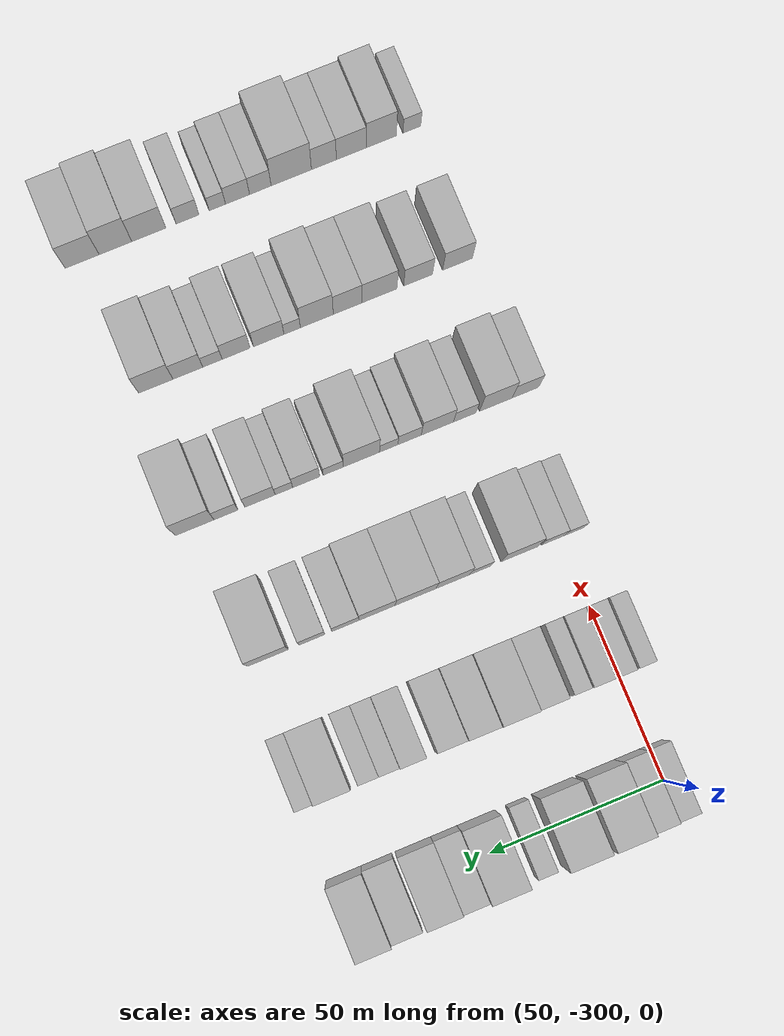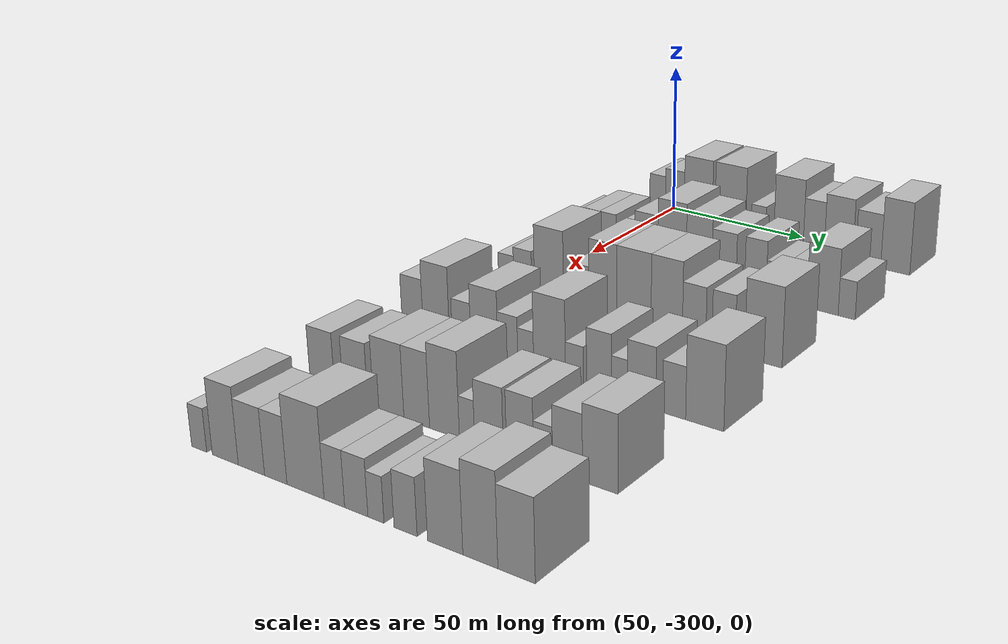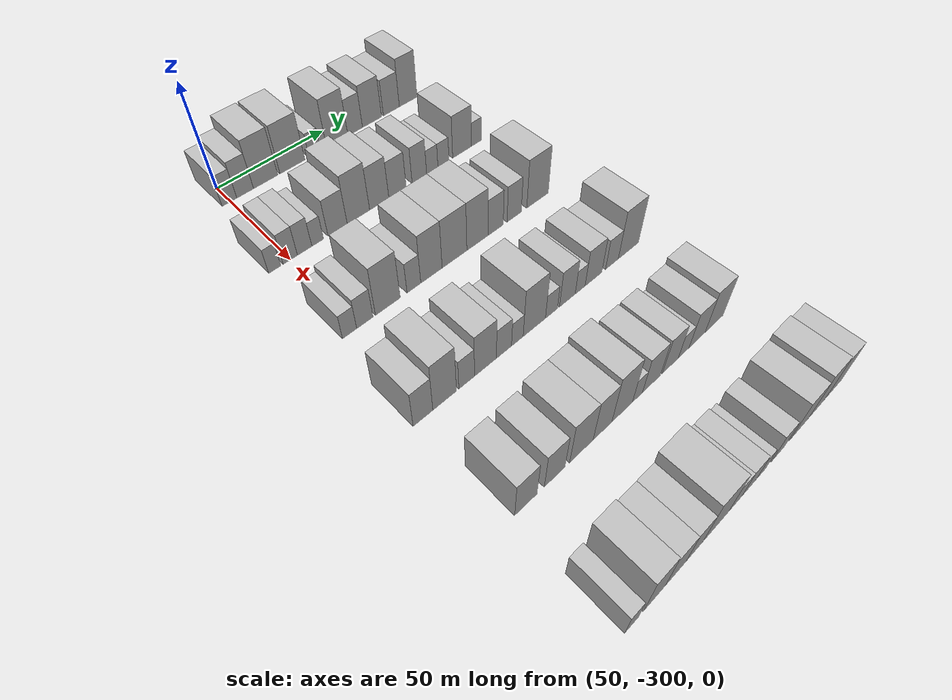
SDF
<sdf version="1.6">
 <world name="default">
  <model name="building_37">
   <static>1</static>
   <pose>50.0000 -300.4534 0 0.000000 0.000000 0.000000</pose>
   <link name="link">
    <pose>0 0 7.50 0 0 0</pose>
    <collision name="collision"><geometry><box><size>20.0000 6.4147 15.0000</size></box></geometry></collision>
    <visual name="visual">
     <cast_shadows>0</cast_shadows>
     <geometry><box><size>20.0000 6.4147 15.0000</size></box></geometry>
     <material>
      <script>
       <uri>model://HANNAS_wall/materials/scripts</uri>
       <uri>model://HANNAS_wall/materials/textures</uri>
       <name>vrc/HANNAS_wall</name>
      </script>
     </material>
    </visual>
   </link>
  </model>
  <model name="building_38">
   <static>1</static>
   <pose>50.0000 -293.5291 0 0.000000 0.000000 0.000000</pose>
   <link name="link">
    <pose>0 0 9.00 0 0 0</pose>
    <collision name="collision"><geometry><box><size>20.0000 7.4340 18.0000</size></box></geometry></collision>
    <visual name="visual">
     <cast_shadows>0</cast_shadows>
     <geometry><box><size>20.0000 7.4340 18.0000</size></box></geometry>
     <material>
      <script>
       <uri>model://HANNAS_wall/materials/scripts</uri>
       <uri>model://HANNAS_wall/materials/textures</uri>
       <name>vrc/HANNAS_wall</name>
      </script>
     </material>
    </visual>
   </link>
  </model>
  <model name="building_39">
   <static>1</static>
   <pose>50.0000 -284.2973 0 0.000000 0.000000 0.000000</pose>
   <link name="link">
    <pose>0 0 12.00 0 0 0</pose>
    <collision name="collision"><geometry><box><size>20.0000 11.0297 24.0000</size></box></geometry></collision>
    <visual name="visual">
     <cast_shadows>0</cast_shadows>
     <geometry><box><size>20.0000 11.0297 24.0000</size></box></geometry>
     <material>
      <script>
       <uri>model://HANNAS_wall/materials/scripts</uri>
       <uri>model://HANNAS_wall/materials/textures</uri>
       <name>vrc/HANNAS_wall</name>
      </script>
     </material>
    </visual>
   </link>
  </model>
  <model name="building_40">
   <static>1</static>
   <pose>50.0000 -271.8673 0 0.000000 0.000000 0.000000</pose>
   <link name="link">
    <pose>0 0 12.00 0 0 0</pose>
    <collision name="collision"><geometry><box><size>20.0000 11.8303 24.0000</size></box></geometry></collision>
    <visual name="visual">
     <cast_shadows>0</cast_shadows>
     <geometry><box><size>20.0000 11.8303 24.0000</size></box></geometry>
     <material>
      <script>
       <uri>model://HANNAS_wall/materials/scripts</uri>
       <uri>model://HANNAS_wall/materials/textures</uri>
       <name>vrc/HANNAS_wall</name>
      </script>
     </material>
    </visual>
   </link>
  </model>
  <model name="building_41">
   <static>1</static>
   <pose>50.0000 -261.1671 0 0.000000 0.000000 0.000000</pose>
   <link name="link">
    <pose>0 0 6.00 0 0 0</pose>
    <collision name="collision"><geometry><box><size>20.0000 5.5702 12.0000</size></box></geometry></collision>
    <visual name="visual">
     <cast_shadows>0</cast_shadows>
     <geometry><box><size>20.0000 5.5702 12.0000</size></box></geometry>
     <material>
      <script>
       <uri>model://HANNAS_wall/materials/scripts</uri>
       <uri>model://HANNAS_wall/materials/textures</uri>
       <name>vrc/HANNAS_wall</name>
      </script>
     </material>
    </visual>
   </link>
  </model>
  <model name="building_42">
   <static>1</static>
   <pose>50.0000 -249.9636 0 0.000000 0.000000 0.000000</pose>
   <link name="link">
    <pose>0 0 12.00 0 0 0</pose>
    <collision name="collision"><geometry><box><size>20.0000 10.8366 24.0000</size></box></geometry></collision>
    <visual name="visual">
     <cast_shadows>0</cast_shadows>
     <geometry><box><size>20.0000 10.8366 24.0000</size></box></geometry>
     <material>
      <script>
       <uri>model://HANNAS_wall/materials/scripts</uri>
       <uri>model://HANNAS_wall/materials/textures</uri>
       <name>vrc/HANNAS_wall</name>
      </script>
     </material>
    </visual>
   </link>
  </model>
  <model name="building_43">
   <static>1</static>
   <pose>50.0000 -240.7548 0 0.000000 0.000000 0.000000</pose>
   <link name="link">
    <pose>0 0 9.00 0 0 0</pose>
    <collision name="collision"><geometry><box><size>20.0000 7.5812 18.0000</size></box></geometry></collision>
    <visual name="visual">
     <cast_shadows>0</cast_shadows>
     <geometry><box><size>20.0000 7.5812 18.0000</size></box></geometry>
     <material>
      <script>
       <uri>model://HANNAS_wall/materials/scripts</uri>
       <uri>model://HANNAS_wall/materials/textures</uri>
       <name>vrc/HANNAS_wall</name>
      </script>
     </material>
    </visual>
   </link>
  </model>
  <model name="building_44">
   <static>1</static>
   <pose>50.0000 -231.9207 0 0.000000 0.000000 0.000000</pose>
   <link name="link">
    <pose>0 0 10.50 0 0 0</pose>
    <collision name="collision"><geometry><box><size>20.0000 10.0871 21.0000</size></box></geometry></collision>
    <visual name="visual">
     <cast_shadows>0</cast_shadows>
     <geometry><box><size>20.0000 10.0871 21.0000</size></box></geometry>
     <material>
      <script>
       <uri>model://HANNAS_wall/materials/scripts</uri>
       <uri>model://HANNAS_wall/materials/textures</uri>
       <name>vrc/HANNAS_wall</name>
      </script>
     </material>
    </visual>
   </link>
  </model>
  <model name="building_45">
   <static>1</static>
   <pose>50.0000 -221.5082 0 0.000000 0.000000 0.000000</pose>
   <link name="link">
    <pose>0 0 9.00 0 0 0</pose>
    <collision name="collision"><geometry><box><size>20.0000 8.7379 18.0000</size></box></geometry></collision>
    <visual name="visual">
     <cast_shadows>0</cast_shadows>
     <geometry><box><size>20.0000 8.7379 18.0000</size></box></geometry>
     <material>
      <script>
       <uri>model://HANNAS_wall/materials/scripts</uri>
       <uri>model://HANNAS_wall/materials/textures</uri>
       <name>vrc/HANNAS_wall</name>
      </script>
     </material>
    </visual>
   </link>
  </model>
  <model name="building_46">
   <static>1</static>
   <pose>50.0000 -212.1835 0 0.000000 0.000000 0.000000</pose>
   <link name="link">
    <pose>0 0 12.00 0 0 0</pose>
    <collision name="collision"><geometry><box><size>20.0000 9.9113 24.0000</size></box></geometry></collision>
    <visual name="visual">
     <cast_shadows>0</cast_shadows>
     <geometry><box><size>20.0000 9.9113 24.0000</size></box></geometry>
     <material>
      <script>
       <uri>model://HANNAS_wall/materials/scripts</uri>
       <uri>model://HANNAS_wall/materials/textures</uri>
       <name>vrc/HANNAS_wall</name>
      </script>
     </material>
    </visual>
   </link>
  </model>
  <model name="building_172">
   <static>1</static>
   <pose>90.0000 -306.5998 0 0.000000 0.000000 0.000000</pose>
   <link name="link">
    <pose>0 0 6.00 0 0 0</pose>
    <collision name="collision"><geometry><box><size>20.0000 5.0105 12.0000</size></box></geometry></collision>
    <visual name="visual">
     <cast_shadows>0</cast_shadows>
     <geometry><box><size>20.0000 5.0105 12.0000</size></box></geometry>
     <material>
      <script>
       <uri>model://HANNAS_wall/materials/scripts</uri>
       <uri>model://HANNAS_wall/materials/textures</uri>
       <name>vrc/HANNAS_wall</name>
      </script>
     </material>
    </visual>
   </link>
  </model>
  <model name="building_173">
   <static>1</static>
   <pose>90.0000 -300.0579 0 0.000000 0.000000 0.000000</pose>
   <link name="link">
    <pose>0 0 7.50 0 0 0</pose>
    <collision name="collision"><geometry><box><size>20.0000 6.0732 15.0000</size></box></geometry></collision>
    <visual name="visual">
     <cast_shadows>0</cast_shadows>
     <geometry><box><size>20.0000 6.0732 15.0000</size></box></geometry>
     <material>
      <script>
       <uri>model://HANNAS_wall/materials/scripts</uri>
       <uri>model://HANNAS_wall/materials/textures</uri>
       <name>vrc/HANNAS_wall</name>
      </script>
     </material>
    </visual>
   </link>
  </model>
  <model name="building_174">
   <static>1</static>
   <pose>90.0000 -293.9124 0 0.000000 0.000000 0.000000</pose>
   <link name="link">
    <pose>0 0 7.50 0 0 0</pose>
    <collision name="collision"><geometry><box><size>20.0000 6.2178 15.0000</size></box></geometry></collision>
    <visual name="visual">
     <cast_shadows>0</cast_shadows>
     <geometry><box><size>20.0000 6.2178 15.0000</size></box></geometry>
     <material>
      <script>
       <uri>model://HANNAS_wall/materials/scripts</uri>
       <uri>model://HANNAS_wall/materials/textures</uri>
       <name>vrc/HANNAS_wall</name>
      </script>
     </material>
    </visual>
   </link>
  </model>
  <model name="building_175">
   <static>1</static>
   <pose>90.0000 -288.2329 0 0.000000 0.000000 0.000000</pose>
   <link name="link">
    <pose>0 0 6.00 0 0 0</pose>
    <collision name="collision"><geometry><box><size>20.0000 5.1413 12.0000</size></box></geometry></collision>
    <visual name="visual">
     <cast_shadows>0</cast_shadows>
     <geometry><box><size>20.0000 5.1413 12.0000</size></box></geometry>
     <material>
      <script>
       <uri>model://HANNAS_wall/materials/scripts</uri>
       <uri>model://HANNAS_wall/materials/textures</uri>
       <name>vrc/HANNAS_wall</name>
      </script>
     </material>
    </visual>
   </link>
  </model>
  <model name="building_176">
   <static>1</static>
   <pose>90.0000 -279.3169 0 0.000000 0.000000 0.000000</pose>
   <link name="link">
    <pose>0 0 9.00 0 0 0</pose>
    <collision name="collision"><geometry><box><size>20.0000 8.6907 18.0000</size></box></geometry></collision>
    <visual name="visual">
     <cast_shadows>0</cast_shadows>
     <geometry><box><size>20.0000 8.6907 18.0000</size></box></geometry>
     <material>
      <script>
       <uri>model://HANNAS_wall/materials/scripts</uri>
       <uri>model://HANNAS_wall/materials/textures</uri>
       <name>vrc/HANNAS_wall</name>
      </script>
     </material>
    </visual>
   </link>
  </model>
  <model name="building_177">
   <static>1</static>
   <pose>90.0000 -269.7369 0 0.000000 0.000000 0.000000</pose>
   <link name="link">
    <pose>0 0 12.00 0 0 0</pose>
    <collision name="collision"><geometry><box><size>20.0000 10.4693 24.0000</size></box></geometry></collision>
    <visual name="visual">
     <cast_shadows>0</cast_shadows>
     <geometry><box><size>20.0000 10.4693 24.0000</size></box></geometry>
     <material>
      <script>
       <uri>model://HANNAS_wall/materials/scripts</uri>
       <uri>model://HANNAS_wall/materials/textures</uri>
       <name>vrc/HANNAS_wall</name>
      </script>
     </material>
    </visual>
   </link>
  </model>
  <model name="building_178">
   <static>1</static>
   <pose>90.0000 -259.8693 0 0.000000 0.000000 0.000000</pose>
   <link name="link">
    <pose>0 0 10.50 0 0 0</pose>
    <collision name="collision"><geometry><box><size>20.0000 9.2658 21.0000</size></box></geometry></collision>
    <visual name="visual">
     <cast_shadows>0</cast_shadows>
     <geometry><box><size>20.0000 9.2658 21.0000</size></box></geometry>
     <material>
      <script>
       <uri>model://HANNAS_wall/materials/scripts</uri>
       <uri>model://HANNAS_wall/materials/textures</uri>
       <name>vrc/HANNAS_wall</name>
      </script>
     </material>
    </visual>
   </link>
  </model>
  <model name="building_179">
   <static>1</static>
   <pose>90.0000 -250.9495 0 0.000000 0.000000 0.000000</pose>
   <link name="link">
    <pose>0 0 9.00 0 0 0</pose>
    <collision name="collision"><geometry><box><size>20.0000 8.5736 18.0000</size></box></geometry></collision>
    <visual name="visual">
     <cast_shadows>0</cast_shadows>
     <geometry><box><size>20.0000 8.5736 18.0000</size></box></geometry>
     <material>
      <script>
       <uri>model://HANNAS_wall/materials/scripts</uri>
       <uri>model://HANNAS_wall/materials/textures</uri>
       <name>vrc/HANNAS_wall</name>
      </script>
     </material>
    </visual>
   </link>
  </model>
  <model name="building_180">
   <static>1</static>
   <pose>90.0000 -239.9450 0 0.000000 0.000000 0.000000</pose>
   <link name="link">
    <pose>0 0 9.00 0 0 0</pose>
    <collision name="collision"><geometry><box><size>20.0000 7.4354 18.0000</size></box></geometry></collision>
    <visual name="visual">
     <cast_shadows>0</cast_shadows>
     <geometry><box><size>20.0000 7.4354 18.0000</size></box></geometry>
     <material>
      <script>
       <uri>model://HANNAS_wall/materials/scripts</uri>
       <uri>model://HANNAS_wall/materials/textures</uri>
       <name>vrc/HANNAS_wall</name>
      </script>
     </material>
    </visual>
   </link>
  </model>
  <model name="building_181">
   <static>1</static>
   <pose>90.0000 -233.2834 0 0.000000 0.000000 0.000000</pose>
   <link name="link">
    <pose>0 0 6.00 0 0 0</pose>
    <collision name="collision"><geometry><box><size>20.0000 5.8878 12.0000</size></box></geometry></collision>
    <visual name="visual">
     <cast_shadows>0</cast_shadows>
     <geometry><box><size>20.0000 5.8878 12.0000</size></box></geometry>
     <material>
      <script>
       <uri>model://HANNAS_wall/materials/scripts</uri>
       <uri>model://HANNAS_wall/materials/textures</uri>
       <name>vrc/HANNAS_wall</name>
      </script>
     </material>
    </visual>
   </link>
  </model>
  <model name="building_182">
   <static>1</static>
   <pose>90.0000 -227.4001 0 0.000000 0.000000 0.000000</pose>
   <link name="link">
    <pose>0 0 6.00 0 0 0</pose>
    <collision name="collision"><geometry><box><size>20.0000 5.8788 12.0000</size></box></geometry></collision>
    <visual name="visual">
     <cast_shadows>0</cast_shadows>
     <geometry><box><size>20.0000 5.8788 12.0000</size></box></geometry>
     <material>
      <script>
       <uri>model://HANNAS_wall/materials/scripts</uri>
       <uri>model://HANNAS_wall/materials/textures</uri>
       <name>vrc/HANNAS_wall</name>
      </script>
     </material>
    </visual>
   </link>
  </model>
  <model name="building_183">
   <static>1</static>
   <pose>90.0000 -217.2953 0 0.000000 0.000000 0.000000</pose>
   <link name="link">
    <pose>0 0 10.50 0 0 0</pose>
    <collision name="collision"><geometry><box><size>20.0000 10.3307 21.0000</size></box></geometry></collision>
    <visual name="visual">
     <cast_shadows>0</cast_shadows>
     <geometry><box><size>20.0000 10.3307 21.0000</size></box></geometry>
     <material>
      <script>
       <uri>model://HANNAS_wall/materials/scripts</uri>
       <uri>model://HANNAS_wall/materials/textures</uri>
       <name>vrc/HANNAS_wall</name>
      </script>
     </material>
    </visual>
   </link>
  </model>
  <model name="building_184">
   <static>1</static>
   <pose>90.0000 -209.3860 0 0.000000 0.000000 0.000000</pose>
   <link name="link">
    <pose>0 0 6.00 0 0 0</pose>
    <collision name="collision"><geometry><box><size>20.0000 5.4880 12.0000</size></box></geometry></collision>
    <visual name="visual">
     <cast_shadows>0</cast_shadows>
     <geometry><box><size>20.0000 5.4880 12.0000</size></box></geometry>
     <material>
      <script>
       <uri>model://HANNAS_wall/materials/scripts</uri>
       <uri>model://HANNAS_wall/materials/textures</uri>
       <name>vrc/HANNAS_wall</name>
      </script>
     </material>
    </visual>
   </link>
  </model>
  <model name="building_311">
   <static>1</static>
   <pose>130.0000 -304.0678 0 0.000000 0.000000 0.000000</pose>
   <link name="link">
    <pose>0 0 6.00 0 0 0</pose>
    <collision name="collision"><geometry><box><size>20.0000 5.7954 12.0000</size></box></geometry></collision>
    <visual name="visual">
     <cast_shadows>0</cast_shadows>
     <geometry><box><size>20.0000 5.7954 12.0000</size></box></geometry>
     <material>
      <script>
       <uri>model://HANNAS_wall/materials/scripts</uri>
       <uri>model://HANNAS_wall/materials/textures</uri>
       <name>vrc/HANNAS_wall</name>
      </script>
     </material>
    </visual>
   </link>
  </model>
  <model name="building_312">
   <static>1</static>
   <pose>130.0000 -297.7676 0 0.000000 0.000000 0.000000</pose>
   <link name="link">
    <pose>0 0 7.50 0 0 0</pose>
    <collision name="collision"><geometry><box><size>20.0000 6.8049 15.0000</size></box></geometry></collision>
    <visual name="visual">
     <cast_shadows>0</cast_shadows>
     <geometry><box><size>20.0000 6.8049 15.0000</size></box></geometry>
     <material>
      <script>
       <uri>model://HANNAS_wall/materials/scripts</uri>
       <uri>model://HANNAS_wall/materials/textures</uri>
       <name>vrc/HANNAS_wall</name>
      </script>
     </material>
    </visual>
   </link>
  </model>
  <model name="building_313">
   <static>1</static>
   <pose>130.0000 -288.0048 0 0.000000 0.000000 0.000000</pose>
   <link name="link">
    <pose>0 0 12.00 0 0 0</pose>
    <collision name="collision"><geometry><box><size>20.0000 10.7208 24.0000</size></box></geometry></collision>
    <visual name="visual">
     <cast_shadows>0</cast_shadows>
     <geometry><box><size>20.0000 10.7208 24.0000</size></box></geometry>
     <material>
      <script>
       <uri>model://HANNAS_wall/materials/scripts</uri>
       <uri>model://HANNAS_wall/materials/textures</uri>
       <name>vrc/HANNAS_wall</name>
      </script>
     </material>
    </visual>
   </link>
  </model>
  <model name="building_314">
   <static>1</static>
   <pose>130.0000 -276.5555 0 0.000000 0.000000 0.000000</pose>
   <link name="link">
    <pose>0 0 7.50 0 0 0</pose>
    <collision name="collision"><geometry><box><size>20.0000 6.1777 15.0000</size></box></geometry></collision>
    <visual name="visual">
     <cast_shadows>0</cast_shadows>
     <geometry><box><size>20.0000 6.1777 15.0000</size></box></geometry>
     <material>
      <script>
       <uri>model://HANNAS_wall/materials/scripts</uri>
       <uri>model://HANNAS_wall/materials/textures</uri>
       <name>vrc/HANNAS_wall</name>
      </script>
     </material>
    </visual>
   </link>
  </model>
  <model name="building_315">
   <static>1</static>
   <pose>130.0000 -268.5387 0 0.000000 0.000000 0.000000</pose>
   <link name="link">
    <pose>0 0 12.00 0 0 0</pose>
    <collision name="collision"><geometry><box><size>20.0000 9.8559 24.0000</size></box></geometry></collision>
    <visual name="visual">
     <cast_shadows>0</cast_shadows>
     <geometry><box><size>20.0000 9.8559 24.0000</size></box></geometry>
     <material>
      <script>
       <uri>model://HANNAS_wall/materials/scripts</uri>
       <uri>model://HANNAS_wall/materials/textures</uri>
       <name>vrc/HANNAS_wall</name>
      </script>
     </material>
    </visual>
   </link>
  </model>
  <model name="building_316">
   <static>1</static>
   <pose>130.0000 -257.6855 0 0.000000 0.000000 0.000000</pose>
   <link name="link">
    <pose>0 0 12.00 0 0 0</pose>
    <collision name="collision"><geometry><box><size>20.0000 11.8505 24.0000</size></box></geometry></collision>
    <visual name="visual">
     <cast_shadows>0</cast_shadows>
     <geometry><box><size>20.0000 11.8505 24.0000</size></box></geometry>
     <material>
      <script>
       <uri>model://HANNAS_wall/materials/scripts</uri>
       <uri>model://HANNAS_wall/materials/textures</uri>
       <name>vrc/HANNAS_wall</name>
      </script>
     </material>
    </visual>
   </link>
  </model>
  <model name="building_317">
   <static>1</static>
   <pose>130.0000 -246.4776 0 0.000000 0.000000 0.000000</pose>
   <link name="link">
    <pose>0 0 12.00 0 0 0</pose>
    <collision name="collision"><geometry><box><size>20.0000 10.5653 24.0000</size></box></geometry></collision>
    <visual name="visual">
     <cast_shadows>0</cast_shadows>
     <geometry><box><size>20.0000 10.5653 24.0000</size></box></geometry>
     <material>
      <script>
       <uri>model://HANNAS_wall/materials/scripts</uri>
       <uri>model://HANNAS_wall/materials/textures</uri>
       <name>vrc/HANNAS_wall</name>
      </script>
     </material>
    </visual>
   </link>
  </model>
  <model name="building_318">
   <static>1</static>
   <pose>130.0000 -237.3393 0 0.000000 0.000000 0.000000</pose>
   <link name="link">
    <pose>0 0 9.00 0 0 0</pose>
    <collision name="collision"><geometry><box><size>20.0000 7.7115 18.0000</size></box></geometry></collision>
    <visual name="visual">
     <cast_shadows>0</cast_shadows>
     <geometry><box><size>20.0000 7.7115 18.0000</size></box></geometry>
     <material>
      <script>
       <uri>model://HANNAS_wall/materials/scripts</uri>
       <uri>model://HANNAS_wall/materials/textures</uri>
       <name>vrc/HANNAS_wall</name>
      </script>
     </material>
    </visual>
   </link>
  </model>
  <model name="building_319">
   <static>1</static>
   <pose>130.0000 -227.7383 0 0.000000 0.000000 0.000000</pose>
   <link name="link">
    <pose>0 0 9.00 0 0 0</pose>
    <collision name="collision"><geometry><box><size>20.0000 7.4904 18.0000</size></box></geometry></collision>
    <visual name="visual">
     <cast_shadows>0</cast_shadows>
     <geometry><box><size>20.0000 7.4904 18.0000</size></box></geometry>
     <material>
      <script>
       <uri>model://HANNAS_wall/materials/scripts</uri>
       <uri>model://HANNAS_wall/materials/textures</uri>
       <name>vrc/HANNAS_wall</name>
      </script>
     </material>
    </visual>
   </link>
  </model>
  <model name="building_320">
   <static>1</static>
   <pose>130.0000 -215.1261 0 0.000000 0.000000 0.000000</pose>
   <link name="link">
    <pose>0 0 12.00 0 0 0</pose>
    <collision name="collision"><geometry><box><size>20.0000 11.7341 24.0000</size></box></geometry></collision>
    <visual name="visual">
     <cast_shadows>0</cast_shadows>
     <geometry><box><size>20.0000 11.7341 24.0000</size></box></geometry>
     <material>
      <script>
       <uri>model://HANNAS_wall/materials/scripts</uri>
       <uri>model://HANNAS_wall/materials/textures</uri>
       <name>vrc/HANNAS_wall</name>
      </script>
     </material>
    </visual>
   </link>
  </model>
  <model name="building_446">
   <static>1</static>
   <pose>170.0000 -306.7978 0 0.000000 0.000000 0.000000</pose>
   <link name="link">
    <pose>0 0 9.00 0 0 0</pose>
    <collision name="collision"><geometry><box><size>20.0000 7.8152 18.0000</size></box></geometry></collision>
    <visual name="visual">
     <cast_shadows>0</cast_shadows>
     <geometry><box><size>20.0000 7.8152 18.0000</size></box></geometry>
     <material>
      <script>
       <uri>model://HANNAS_wall/materials/scripts</uri>
       <uri>model://HANNAS_wall/materials/textures</uri>
       <name>vrc/HANNAS_wall</name>
      </script>
     </material>
    </visual>
   </link>
  </model>
  <model name="building_447">
   <static>1</static>
   <pose>170.0000 -298.0580 0 0.000000 0.000000 0.000000</pose>
   <link name="link">
    <pose>0 0 12.00 0 0 0</pose>
    <collision name="collision"><geometry><box><size>20.0000 9.6644 24.0000</size></box></geometry></collision>
    <visual name="visual">
     <cast_shadows>0</cast_shadows>
     <geometry><box><size>20.0000 9.6644 24.0000</size></box></geometry>
     <material>
      <script>
       <uri>model://HANNAS_wall/materials/scripts</uri>
       <uri>model://HANNAS_wall/materials/textures</uri>
       <name>vrc/HANNAS_wall</name>
      </script>
     </material>
    </visual>
   </link>
  </model>
  <model name="building_448">
   <static>1</static>
   <pose>170.0000 -288.9006 0 0.000000 0.000000 0.000000</pose>
   <link name="link">
    <pose>0 0 7.50 0 0 0</pose>
    <collision name="collision"><geometry><box><size>20.0000 6.6505 15.0000</size></box></geometry></collision>
    <visual name="visual">
     <cast_shadows>0</cast_shadows>
     <geometry><box><size>20.0000 6.6505 15.0000</size></box></geometry>
     <material>
      <script>
       <uri>model://HANNAS_wall/materials/scripts</uri>
       <uri>model://HANNAS_wall/materials/textures</uri>
       <name>vrc/HANNAS_wall</name>
      </script>
     </material>
    </visual>
   </link>
  </model>
  <model name="building_449">
   <static>1</static>
   <pose>170.0000 -280.8083 0 0.000000 0.000000 0.000000</pose>
   <link name="link">
    <pose>0 0 10.50 0 0 0</pose>
    <collision name="collision"><geometry><box><size>20.0000 9.5341 21.0000</size></box></geometry></collision>
    <visual name="visual">
     <cast_shadows>0</cast_shadows>
     <geometry><box><size>20.0000 9.5341 21.0000</size></box></geometry>
     <material>
      <script>
       <uri>model://HANNAS_wall/materials/scripts</uri>
       <uri>model://HANNAS_wall/materials/textures</uri>
       <name>vrc/HANNAS_wall</name>
      </script>
     </material>
    </visual>
   </link>
  </model>
  <model name="building_450">
   <static>1</static>
   <pose>170.0000 -272.6206 0 0.000000 0.000000 0.000000</pose>
   <link name="link">
    <pose>0 0 7.50 0 0 0</pose>
    <collision name="collision"><geometry><box><size>20.0000 6.8413 15.0000</size></box></geometry></collision>
    <visual name="visual">
     <cast_shadows>0</cast_shadows>
     <geometry><box><size>20.0000 6.8413 15.0000</size></box></geometry>
     <material>
      <script>
       <uri>model://HANNAS_wall/materials/scripts</uri>
       <uri>model://HANNAS_wall/materials/textures</uri>
       <name>vrc/HANNAS_wall</name>
      </script>
     </material>
    </visual>
   </link>
  </model>
  <model name="building_451">
   <static>1</static>
   <pose>170.0000 -266.5077 0 0.000000 0.000000 0.000000</pose>
   <link name="link">
    <pose>0 0 6.00 0 0 0</pose>
    <collision name="collision"><geometry><box><size>20.0000 5.3844 12.0000</size></box></geometry></collision>
    <visual name="visual">
     <cast_shadows>0</cast_shadows>
     <geometry><box><size>20.0000 5.3844 12.0000</size></box></geometry>
     <material>
      <script>
       <uri>model://HANNAS_wall/materials/scripts</uri>
       <uri>model://HANNAS_wall/materials/textures</uri>
       <name>vrc/HANNAS_wall</name>
      </script>
     </material>
    </visual>
   </link>
  </model>
  <model name="building_452">
   <static>1</static>
   <pose>170.0000 -258.5219 0 0.000000 0.000000 0.000000</pose>
   <link name="link">
    <pose>0 0 12.00 0 0 0</pose>
    <collision name="collision"><geometry><box><size>20.0000 10.5872 24.0000</size></box></geometry></collision>
    <visual name="visual">
     <cast_shadows>0</cast_shadows>
     <geometry><box><size>20.0000 10.5872 24.0000</size></box></geometry>
     <material>
      <script>
       <uri>model://HANNAS_wall/materials/scripts</uri>
       <uri>model://HANNAS_wall/materials/textures</uri>
       <name>vrc/HANNAS_wall</name>
      </script>
     </material>
    </visual>
   </link>
  </model>
  <model name="building_453">
   <static>1</static>
   <pose>170.0000 -250.2951 0 0.000000 0.000000 0.000000</pose>
   <link name="link">
    <pose>0 0 6.00 0 0 0</pose>
    <collision name="collision"><geometry><box><size>20.0000 5.8665 12.0000</size></box></geometry></collision>
    <visual name="visual">
     <cast_shadows>0</cast_shadows>
     <geometry><box><size>20.0000 5.8665 12.0000</size></box></geometry>
     <material>
      <script>
       <uri>model://HANNAS_wall/materials/scripts</uri>
       <uri>model://HANNAS_wall/materials/textures</uri>
       <name>vrc/HANNAS_wall</name>
      </script>
     </material>
    </visual>
   </link>
  </model>
  <model name="building_454">
   <static>1</static>
   <pose>170.0000 -242.4147 0 0.000000 0.000000 0.000000</pose>
   <link name="link">
    <pose>0 0 9.00 0 0 0</pose>
    <collision name="collision"><geometry><box><size>20.0000 7.8942 18.0000</size></box></geometry></collision>
    <visual name="visual">
     <cast_shadows>0</cast_shadows>
     <geometry><box><size>20.0000 7.8942 18.0000</size></box></geometry>
     <material>
      <script>
       <uri>model://HANNAS_wall/materials/scripts</uri>
       <uri>model://HANNAS_wall/materials/textures</uri>
       <name>vrc/HANNAS_wall</name>
      </script>
     </material>
    </visual>
   </link>
  </model>
  <model name="building_455">
   <static>1</static>
   <pose>170.0000 -235.9131 0 0.000000 0.000000 0.000000</pose>
   <link name="link">
    <pose>0 0 6.00 0 0 0</pose>
    <collision name="collision"><geometry><box><size>20.0000 5.1089 12.0000</size></box></geometry></collision>
    <visual name="visual">
     <cast_shadows>0</cast_shadows>
     <geometry><box><size>20.0000 5.1089 12.0000</size></box></geometry>
     <material>
      <script>
       <uri>model://HANNAS_wall/materials/scripts</uri>
       <uri>model://HANNAS_wall/materials/textures</uri>
       <name>vrc/HANNAS_wall</name>
      </script>
     </material>
    </visual>
   </link>
  </model>
  <model name="building_456">
   <static>1</static>
   <pose>170.0000 -228.9455 0 0.000000 0.000000 0.000000</pose>
   <link name="link">
    <pose>0 0 9.00 0 0 0</pose>
    <collision name="collision"><geometry><box><size>20.0000 8.8263 18.0000</size></box></geometry></collision>
    <visual name="visual">
     <cast_shadows>0</cast_shadows>
     <geometry><box><size>20.0000 8.8263 18.0000</size></box></geometry>
     <material>
      <script>
       <uri>model://HANNAS_wall/materials/scripts</uri>
       <uri>model://HANNAS_wall/materials/textures</uri>
       <name>vrc/HANNAS_wall</name>
      </script>
     </material>
    </visual>
   </link>
  </model>
  <model name="building_457">
   <static>1</static>
   <pose>170.0000 -219.0431 0 0.000000 0.000000 0.000000</pose>
   <link name="link">
    <pose>0 0 7.50 0 0 0</pose>
    <collision name="collision"><geometry><box><size>20.0000 6.9785 15.0000</size></box></geometry></collision>
    <visual name="visual">
     <cast_shadows>0</cast_shadows>
     <geometry><box><size>20.0000 6.9785 15.0000</size></box></geometry>
     <material>
      <script>
       <uri>model://HANNAS_wall/materials/scripts</uri>
       <uri>model://HANNAS_wall/materials/textures</uri>
       <name>vrc/HANNAS_wall</name>
      </script>
     </material>
    </visual>
   </link>
  </model>
  <model name="building_458">
   <static>1</static>
   <pose>170.0000 -209.9265 0 0.000000 0.000000 0.000000</pose>
   <link name="link">
    <pose>0 0 12.00 0 0 0</pose>
    <collision name="collision"><geometry><box><size>20.0000 11.2547 24.0000</size></box></geometry></collision>
    <visual name="visual">
     <cast_shadows>0</cast_shadows>
     <geometry><box><size>20.0000 11.2547 24.0000</size></box></geometry>
     <material>
      <script>
       <uri>model://HANNAS_wall/materials/scripts</uri>
       <uri>model://HANNAS_wall/materials/textures</uri>
       <name>vrc/HANNAS_wall</name>
      </script>
     </material>
    </visual>
   </link>
  </model>
  <model name="building_582">
   <static>1</static>
   <pose>210.0000 -303.5442 0 0.000000 0.000000 0.000000</pose>
   <link name="link">
    <pose>0 0 9.00 0 0 0</pose>
    <collision name="collision"><geometry><box><size>20.0000 8.8421 18.0000</size></box></geometry></collision>
    <visual name="visual">
     <cast_shadows>0</cast_shadows>
     <geometry><box><size>20.0000 8.8421 18.0000</size></box></geometry>
     <material>
      <script>
       <uri>model://HANNAS_wall/materials/scripts</uri>
       <uri>model://HANNAS_wall/materials/textures</uri>
       <name>vrc/HANNAS_wall</name>
      </script>
     </material>
    </visual>
   </link>
  </model>
  <model name="building_583">
   <static>1</static>
   <pose>210.0000 -291.8268 0 0.000000 0.000000 0.000000</pose>
   <link name="link">
    <pose>0 0 9.00 0 0 0</pose>
    <collision name="collision"><geometry><box><size>20.0000 8.5929 18.0000</size></box></geometry></collision>
    <visual name="visual">
     <cast_shadows>0</cast_shadows>
     <geometry><box><size>20.0000 8.5929 18.0000</size></box></geometry>
     <material>
      <script>
       <uri>model://HANNAS_wall/materials/scripts</uri>
       <uri>model://HANNAS_wall/materials/textures</uri>
       <name>vrc/HANNAS_wall</name>
      </script>
     </material>
    </visual>
   </link>
  </model>
  <model name="building_584">
   <static>1</static>
   <pose>210.0000 -280.3818 0 0.000000 0.000000 0.000000</pose>
   <link name="link">
    <pose>0 0 10.50 0 0 0</pose>
    <collision name="collision"><geometry><box><size>20.0000 10.2970 21.0000</size></box></geometry></collision>
    <visual name="visual">
     <cast_shadows>0</cast_shadows>
     <geometry><box><size>20.0000 10.2970 21.0000</size></box></geometry>
     <material>
      <script>
       <uri>model://HANNAS_wall/materials/scripts</uri>
       <uri>model://HANNAS_wall/materials/textures</uri>
       <name>vrc/HANNAS_wall</name>
      </script>
     </material>
    </visual>
   </link>
  </model>
  <model name="building_585">
   <static>1</static>
   <pose>210.0000 -270.9788 0 0.000000 0.000000 0.000000</pose>
   <link name="link">
    <pose>0 0 10.50 0 0 0</pose>
    <collision name="collision"><geometry><box><size>20.0000 8.5091 21.0000</size></box></geometry></collision>
    <visual name="visual">
     <cast_shadows>0</cast_shadows>
     <geometry><box><size>20.0000 8.5091 21.0000</size></box></geometry>
     <material>
      <script>
       <uri>model://HANNAS_wall/materials/scripts</uri>
       <uri>model://HANNAS_wall/materials/textures</uri>
       <name>vrc/HANNAS_wall</name>
      </script>
     </material>
    </visual>
   </link>
  </model>
  <model name="building_586">
   <static>1</static>
   <pose>210.0000 -261.8730 0 0.000000 0.000000 0.000000</pose>
   <link name="link">
    <pose>0 0 12.00 0 0 0</pose>
    <collision name="collision"><geometry><box><size>20.0000 9.7023 24.0000</size></box></geometry></collision>
    <visual name="visual">
     <cast_shadows>0</cast_shadows>
     <geometry><box><size>20.0000 9.7023 24.0000</size></box></geometry>
     <material>
      <script>
       <uri>model://HANNAS_wall/materials/scripts</uri>
       <uri>model://HANNAS_wall/materials/textures</uri>
       <name>vrc/HANNAS_wall</name>
      </script>
     </material>
    </visual>
   </link>
  </model>
  <model name="building_587">
   <static>1</static>
   <pose>210.0000 -254.5924 0 0.000000 0.000000 0.000000</pose>
   <link name="link">
    <pose>0 0 6.00 0 0 0</pose>
    <collision name="collision"><geometry><box><size>20.0000 4.8590 12.0000</size></box></geometry></collision>
    <visual name="visual">
     <cast_shadows>0</cast_shadows>
     <geometry><box><size>20.0000 4.8590 12.0000</size></box></geometry>
     <material>
      <script>
       <uri>model://HANNAS_wall/materials/scripts</uri>
       <uri>model://HANNAS_wall/materials/textures</uri>
       <name>vrc/HANNAS_wall</name>
      </script>
     </material>
    </visual>
   </link>
  </model>
  <model name="building_588">
   <static>1</static>
   <pose>210.0000 -247.6802 0 0.000000 0.000000 0.000000</pose>
   <link name="link">
    <pose>0 0 9.00 0 0 0</pose>
    <collision name="collision"><geometry><box><size>20.0000 8.9654 18.0000</size></box></geometry></collision>
    <visual name="visual">
     <cast_shadows>0</cast_shadows>
     <geometry><box><size>20.0000 8.9654 18.0000</size></box></geometry>
     <material>
      <script>
       <uri>model://HANNAS_wall/materials/scripts</uri>
       <uri>model://HANNAS_wall/materials/textures</uri>
       <name>vrc/HANNAS_wall</name>
      </script>
     </material>
    </visual>
   </link>
  </model>
  <model name="building_589">
   <static>1</static>
   <pose>210.0000 -238.0925 0 0.000000 0.000000 0.000000</pose>
   <link name="link">
    <pose>0 0 9.00 0 0 0</pose>
    <collision name="collision"><geometry><box><size>20.0000 8.2100 18.0000</size></box></geometry></collision>
    <visual name="visual">
     <cast_shadows>0</cast_shadows>
     <geometry><box><size>20.0000 8.2100 18.0000</size></box></geometry>
     <material>
      <script>
       <uri>model://HANNAS_wall/materials/scripts</uri>
       <uri>model://HANNAS_wall/materials/textures</uri>
       <name>vrc/HANNAS_wall</name>
      </script>
     </material>
    </visual>
   </link>
  </model>
  <model name="building_590">
   <static>1</static>
   <pose>210.0000 -231.1530 0 0.000000 0.000000 0.000000</pose>
   <link name="link">
    <pose>0 0 6.00 0 0 0</pose>
    <collision name="collision"><geometry><box><size>20.0000 5.6689 12.0000</size></box></geometry></collision>
    <visual name="visual">
     <cast_shadows>0</cast_shadows>
     <geometry><box><size>20.0000 5.6689 12.0000</size></box></geometry>
     <material>
      <script>
       <uri>model://HANNAS_wall/materials/scripts</uri>
       <uri>model://HANNAS_wall/materials/textures</uri>
       <name>vrc/HANNAS_wall</name>
      </script>
     </material>
    </visual>
   </link>
  </model>
  <model name="building_591">
   <static>1</static>
   <pose>210.0000 -223.9439 0 0.000000 0.000000 0.000000</pose>
   <link name="link">
    <pose>0 0 9.00 0 0 0</pose>
    <collision name="collision"><geometry><box><size>20.0000 8.7494 18.0000</size></box></geometry></collision>
    <visual name="visual">
     <cast_shadows>0</cast_shadows>
     <geometry><box><size>20.0000 8.7494 18.0000</size></box></geometry>
     <material>
      <script>
       <uri>model://HANNAS_wall/materials/scripts</uri>
       <uri>model://HANNAS_wall/materials/textures</uri>
       <name>vrc/HANNAS_wall</name>
      </script>
     </material>
    </visual>
   </link>
  </model>
  <model name="building_592">
   <static>1</static>
   <pose>210.0000 -214.5355 0 0.000000 0.000000 0.000000</pose>
   <link name="link">
    <pose>0 0 10.50 0 0 0</pose>
    <collision name="collision"><geometry><box><size>20.0000 10.0674 21.0000</size></box></geometry></collision>
    <visual name="visual">
     <cast_shadows>0</cast_shadows>
     <geometry><box><size>20.0000 10.0674 21.0000</size></box></geometry>
     <material>
      <script>
       <uri>model://HANNAS_wall/materials/scripts</uri>
       <uri>model://HANNAS_wall/materials/textures</uri>
       <name>vrc/HANNAS_wall</name>
      </script>
     </material>
    </visual>
   </link>
  </model>
  <model name="building_727">
   <static>1</static>
   <pose>250.0000 -306.6268 0 0.000000 0.000000 0.000000</pose>
   <link name="link">
    <pose>0 0 6.00 0 0 0</pose>
    <collision name="collision"><geometry><box><size>20.0000 5.3404 12.0000</size></box></geometry></collision>
    <visual name="visual">
     <cast_shadows>0</cast_shadows>
     <geometry><box><size>20.0000 5.3404 12.0000</size></box></geometry>
     <material>
      <script>
       <uri>model://HANNAS_wall/materials/scripts</uri>
       <uri>model://HANNAS_wall/materials/textures</uri>
       <name>vrc/HANNAS_wall</name>
      </script>
     </material>
    </visual>
   </link>
  </model>
  <model name="building_728">
   <static>1</static>
   <pose>250.0000 -297.4536 0 0.000000 0.000000 0.000000</pose>
   <link name="link">
    <pose>0 0 10.50 0 0 0</pose>
    <collision name="collision"><geometry><box><size>20.0000 9.0060 21.0000</size></box></geometry></collision>
    <visual name="visual">
     <cast_shadows>0</cast_shadows>
     <geometry><box><size>20.0000 9.0060 21.0000</size></box></geometry>
     <material>
      <script>
       <uri>model://HANNAS_wall/materials/scripts</uri>
       <uri>model://HANNAS_wall/materials/textures</uri>
       <name>vrc/HANNAS_wall</name>
      </script>
     </material>
    </visual>
   </link>
  </model>
  <model name="building_729">
   <static>1</static>
   <pose>250.0000 -288.4976 0 0.000000 0.000000 0.000000</pose>
   <link name="link">
    <pose>0 0 9.00 0 0 0</pose>
    <collision name="collision"><geometry><box><size>20.0000 8.9061 18.0000</size></box></geometry></collision>
    <visual name="visual">
     <cast_shadows>0</cast_shadows>
     <geometry><box><size>20.0000 8.9061 18.0000</size></box></geometry>
     <material>
      <script>
       <uri>model://HANNAS_wall/materials/scripts</uri>
       <uri>model://HANNAS_wall/materials/textures</uri>
       <name>vrc/HANNAS_wall</name>
      </script>
     </material>
    </visual>
   </link>
  </model>
  <model name="building_730">
   <static>1</static>
   <pose>250.0000 -280.3283 0 0.000000 0.000000 0.000000</pose>
   <link name="link">
    <pose>0 0 9.00 0 0 0</pose>
    <collision name="collision"><geometry><box><size>20.0000 7.4324 18.0000</size></box></geometry></collision>
    <visual name="visual">
     <cast_shadows>0</cast_shadows>
     <geometry><box><size>20.0000 7.4324 18.0000</size></box></geometry>
     <material>
      <script>
       <uri>model://HANNAS_wall/materials/scripts</uri>
       <uri>model://HANNAS_wall/materials/textures</uri>
       <name>vrc/HANNAS_wall</name>
      </script>
     </material>
    </visual>
   </link>
  </model>
  <model name="building_731">
   <static>1</static>
   <pose>250.0000 -270.6215 0 0.000000 0.000000 0.000000</pose>
   <link name="link">
    <pose>0 0 12.00 0 0 0</pose>
    <collision name="collision"><geometry><box><size>20.0000 11.9814 24.0000</size></box></geometry></collision>
    <visual name="visual">
     <cast_shadows>0</cast_shadows>
     <geometry><box><size>20.0000 11.9814 24.0000</size></box></geometry>
     <material>
      <script>
       <uri>model://HANNAS_wall/materials/scripts</uri>
       <uri>model://HANNAS_wall/materials/textures</uri>
       <name>vrc/HANNAS_wall</name>
      </script>
     </material>
    </visual>
   </link>
  </model>
  <model name="building_732">
   <static>1</static>
   <pose>250.0000 -261.4113 0 0.000000 0.000000 0.000000</pose>
   <link name="link">
    <pose>0 0 7.50 0 0 0</pose>
    <collision name="collision"><geometry><box><size>20.0000 6.4389 15.0000</size></box></geometry></collision>
    <visual name="visual">
     <cast_shadows>0</cast_shadows>
     <geometry><box><size>20.0000 6.4389 15.0000</size></box></geometry>
     <material>
      <script>
       <uri>model://HANNAS_wall/materials/scripts</uri>
       <uri>model://HANNAS_wall/materials/textures</uri>
       <name>vrc/HANNAS_wall</name>
      </script>
     </material>
    </visual>
   </link>
  </model>
  <model name="building_733">
   <static>1</static>
   <pose>250.0000 -254.6157 0 0.000000 0.000000 0.000000</pose>
   <link name="link">
    <pose>0 0 7.50 0 0 0</pose>
    <collision name="collision"><geometry><box><size>20.0000 7.1525 15.0000</size></box></geometry></collision>
    <visual name="visual">
     <cast_shadows>0</cast_shadows>
     <geometry><box><size>20.0000 7.1525 15.0000</size></box></geometry>
     <material>
      <script>
       <uri>model://HANNAS_wall/materials/scripts</uri>
       <uri>model://HANNAS_wall/materials/textures</uri>
       <name>vrc/HANNAS_wall</name>
      </script>
     </material>
    </visual>
   </link>
  </model>
  <model name="building_734">
   <static>1</static>
   <pose>250.0000 -248.6131 0 0.000000 0.000000 0.000000</pose>
   <link name="link">
    <pose>0 0 6.00 0 0 0</pose>
    <collision name="collision"><geometry><box><size>20.0000 4.8528 12.0000</size></box></geometry></collision>
    <visual name="visual">
     <cast_shadows>0</cast_shadows>
     <geometry><box><size>20.0000 4.8528 12.0000</size></box></geometry>
     <material>
      <script>
       <uri>model://HANNAS_wall/materials/scripts</uri>
       <uri>model://HANNAS_wall/materials/textures</uri>
       <name>vrc/HANNAS_wall</name>
      </script>
     </material>
    </visual>
   </link>
  </model>
  <model name="building_735">
   <static>1</static>
   <pose>250.0000 -239.7818 0 0.000000 0.000000 0.000000</pose>
   <link name="link">
    <pose>0 0 7.50 0 0 0</pose>
    <collision name="collision"><geometry><box><size>20.0000 6.8098 15.0000</size></box></geometry></collision>
    <visual name="visual">
     <cast_shadows>0</cast_shadows>
     <geometry><box><size>20.0000 6.8098 15.0000</size></box></geometry>
     <material>
      <script>
       <uri>model://HANNAS_wall/materials/scripts</uri>
       <uri>model://HANNAS_wall/materials/textures</uri>
       <name>vrc/HANNAS_wall</name>
      </script>
     </material>
    </visual>
   </link>
  </model>
  <model name="building_736">
   <static>1</static>
   <pose>250.0000 -228.3532 0 0.000000 0.000000 0.000000</pose>
   <link name="link">
    <pose>0 0 10.50 0 0 0</pose>
    <collision name="collision"><geometry><box><size>20.0000 10.0473 21.0000</size></box></geometry></collision>
    <visual name="visual">
     <cast_shadows>0</cast_shadows>
     <geometry><box><size>20.0000 10.0473 21.0000</size></box></geometry>
     <material>
      <script>
       <uri>model://HANNAS_wall/materials/scripts</uri>
       <uri>model://HANNAS_wall/materials/textures</uri>
       <name>vrc/HANNAS_wall</name>
      </script>
     </material>
    </visual>
   </link>
  </model>
  <model name="building_737">
   <static>1</static>
   <pose>250.0000 -218.5039 0 0.000000 0.000000 0.000000</pose>
   <link name="link">
    <pose>0 0 12.00 0 0 0</pose>
    <collision name="collision"><geometry><box><size>20.0000 9.6513 24.0000</size></box></geometry></collision>
    <visual name="visual">
     <cast_shadows>0</cast_shadows>
     <geometry><box><size>20.0000 9.6513 24.0000</size></box></geometry>
     <material>
      <script>
       <uri>model://HANNAS_wall/materials/scripts</uri>
       <uri>model://HANNAS_wall/materials/textures</uri>
       <name>vrc/HANNAS_wall</name>
      </script>
     </material>
    </visual>
   </link>
  </model>
  <model name="building_738">
   <static>1</static>
   <pose>250.0000 -208.6705 0 0.000000 0.000000 0.000000</pose>
   <link name="link">
    <pose>0 0 10.50 0 0 0</pose>
    <collision name="collision"><geometry><box><size>20.0000 10.0154 21.0000</size></box></geometry></collision>
    <visual name="visual">
     <cast_shadows>0</cast_shadows>
     <geometry><box><size>20.0000 10.0154 21.0000</size></box></geometry>
     <material>
      <script>
       <uri>model://HANNAS_wall/materials/scripts</uri>
       <uri>model://HANNAS_wall/materials/textures</uri>
       <name>vrc/HANNAS_wall</name>
      </script>
     </material>
    </visual>
   </link>
  </model>
 </world>
</sdf>
